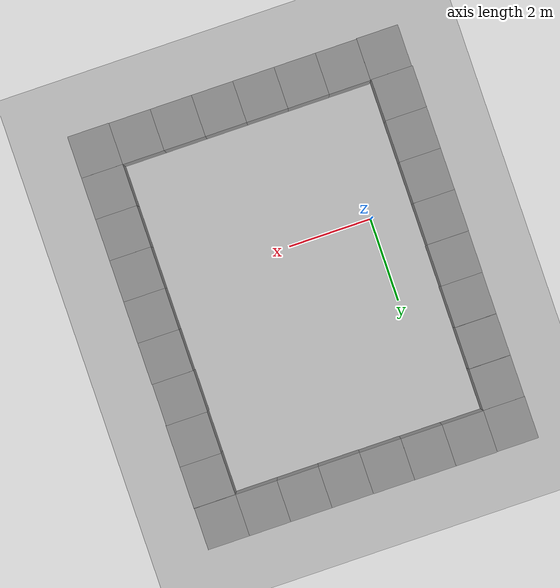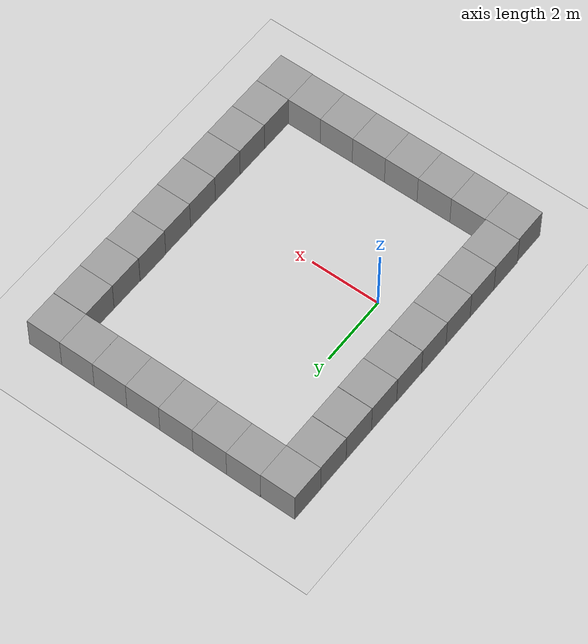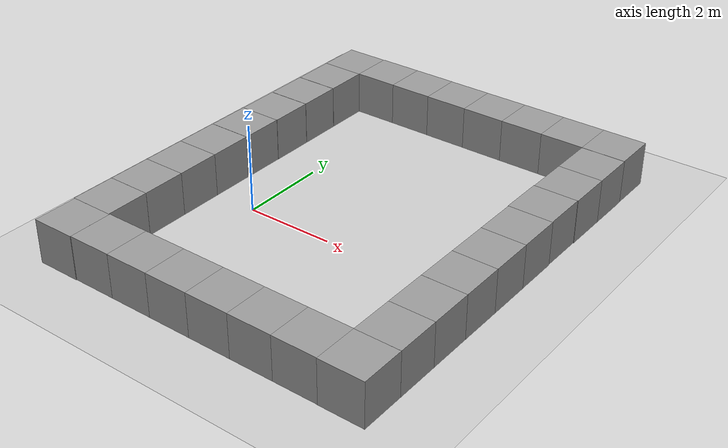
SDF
<sdf version="1.7">
 <world name="default">
  <model name="ground_plane">
   <static>1</static>
   <link name="link">
    <collision name="collision">
     <geometry><plane><normal>0 0 1</normal><size>100 100</size></plane></geometry>
     <surface><friction><ode><mu>100</mu><mu2>50</mu2></ode></friction></surface>
    </collision>
    <visual name="visual">
     <cast_shadows>0</cast_shadows>
     <geometry><plane><normal>0 0 1</normal><size>100 100</size></plane></geometry>
     <material>
      <script><uri>file://media/materials/scripts/gazebo.material</uri><name>Gazebo/Grey</name></script>
     </material>
    </visual>
   </link>
  </model>
  <light name="sun" type="directional">
   <pose>0 0 10 0 -0 0</pose>
   <diffuse>0.8 0.8 0.8 1</diffuse>
   <specular>0.2 0.2 0.2 1</specular>
   <attenuation>
    <range>1000</range>
    <constant>0.9</constant>
    <linear>0.01</linear>
    <quadratic>0.001</quadratic>
   </attenuation>
   <direction>-0.5 0.1 -0.9</direction>
   <spot><inner_angle>0</inner_angle><outer_angle>0</outer_angle><falloff>0</falloff></spot>
  </light>
  <scene><shadows>0</shadows><ambient>0.4 0.4 0.4 1</ambient><background>0.7 0.7 0.7 1</background></scene>
  <physics type="ode">
   <real_time_update_rate>1000</real_time_update_rate>
   <max_step_size>0.001</max_step_size>
   <real_time_factor>1</real_time_factor>
   <ode>
    <solver>
     <type>quick</type>
     <iters>150</iters>
     <precon_iters>0</precon_iters>
     <sor>1.4</sor>
     <use_dynamic_moi_rescaling>1</use_dynamic_moi_rescaling>
    </solver>
    <constraints>
     <cfm>1e-05</cfm>
     <erp>0.2</erp>
     <contact_max_correcting_vel>2000</contact_max_correcting_vel>
     <contact_surface_layer>0.01</contact_surface_layer>
    </constraints>
   </ode>
  </physics>
  <gravity>0 0 -9.8</gravity>
  <magnetic_field>6e-06 2.3e-05 -4.2e-05</magnetic_field>
  <atmosphere type="adiabatic"/>
  <audio><device>default</device></audio>
  <spherical_coordinates>
   <surface_model>EARTH_WGS84</surface_model>
   <latitude_deg>0</latitude_deg>
   <longitude_deg>0</longitude_deg>
   <elevation>0</elevation>
   <heading_deg>0</heading_deg>
  </spherical_coordinates>
  <model name="unit_box">
   <pose>-0.507906 5.50887 0.5 0 -0 2.7e-05</pose>
   <link name="link">
    <inertial>
     <mass>1</mass>
     <inertia>
      <ixx>0.166667</ixx>
      <ixy>0</ixy>
      <ixz>0</ixz>
      <iyy>0.166667</iyy>
      <iyz>0</iyz>
      <izz>0.166667</izz>
     </inertia>
    </inertial>
    <collision name="collision"><geometry><box><size>1 1 1</size></box></geometry></collision>
    <visual name="visual">
     <geometry><box><size>1 1 1</size></box></geometry>
     <material>
      <script><name>Gazebo/Grey</name><uri>file://media/materials/scripts/gazebo.material</uri></script>
     </material>
    </visual>
   </link>
  </model>
  <model name="unit_box_0">
   <pose>0.492095 5.50744 0.5 0 -0 2.7e-05</pose>
   <link name="link">
    <inertial>
     <mass>1</mass>
     <inertia>
      <ixx>0.166667</ixx>
      <ixy>0</ixy>
      <ixz>0</ixz>
      <iyy>0.166667</iyy>
      <iyz>0</iyz>
      <izz>0.166667</izz>
     </inertia>
    </inertial>
    <collision name="collision"><geometry><box><size>1 1 1</size></box></geometry></collision>
    <visual name="visual">
     <geometry><box><size>1 1 1</size></box></geometry>
     <material>
      <script><name>Gazebo/Grey</name><uri>file://media/materials/scripts/gazebo.material</uri></script>
     </material>
    </visual>
   </link>
  </model>
  <model name="unit_box_1">
   <pose>1.49216 5.50345 0.5 0 -0 0.000152</pose>
   <link name="link">
    <inertial>
     <mass>1</mass>
     <inertia>
      <ixx>0.166667</ixx>
      <ixy>0</ixy>
      <ixz>0</ixz>
      <iyy>0.166667</iyy>
      <iyz>0</iyz>
      <izz>0.166667</izz>
     </inertia>
    </inertial>
    <collision name="collision"><geometry><box><size>1 1 1</size></box></geometry></collision>
    <visual name="visual">
     <geometry><box><size>1 1 1</size></box></geometry>
     <material>
      <script><name>Gazebo/Grey</name><uri>file://media/materials/scripts/gazebo.material</uri></script>
     </material>
    </visual>
   </link>
  </model>
  <model name="unit_box_2">
   <pose>2.49216 5.50016 0.5 0 -0 0.000153</pose>
   <link name="link">
    <inertial>
     <mass>1</mass>
     <inertia>
      <ixx>0.166667</ixx>
      <ixy>0</ixy>
      <ixz>0</ixz>
      <iyy>0.166667</iyy>
      <iyz>0</iyz>
      <izz>0.166667</izz>
     </inertia>
    </inertial>
    <collision name="collision"><geometry><box><size>1 1 1</size></box></geometry></collision>
    <visual name="visual">
     <geometry><box><size>1 1 1</size></box></geometry>
     <material>
      <script><name>Gazebo/Grey</name><uri>file://media/materials/scripts/gazebo.material</uri></script>
     </material>
    </visual>
   </link>
  </model>
  <model name="unit_box_3">
   <pose>3.49216 5.50037 0.5 0 -0 0.000145</pose>
   <link name="link">
    <inertial>
     <mass>1</mass>
     <inertia>
      <ixx>0.166667</ixx>
      <ixy>0</ixy>
      <ixz>0</ixz>
      <iyy>0.166667</iyy>
      <iyz>0</iyz>
      <izz>0.166667</izz>
     </inertia>
    </inertial>
    <collision name="collision"><geometry><box><size>1 1 1</size></box></geometry></collision>
    <visual name="visual">
     <geometry><box><size>1 1 1</size></box></geometry>
     <material>
      <script><name>Gazebo/Grey</name><uri>file://media/materials/scripts/gazebo.material</uri></script>
     </material>
    </visual>
   </link>
  </model>
  <model name="unit_box_4">
   <pose>4.49221 5.5008 0.5 0 -0 0.000225</pose>
   <link name="link">
    <inertial>
     <mass>1</mass>
     <inertia>
      <ixx>0.166667</ixx>
      <ixy>0</ixy>
      <ixz>0</ixz>
      <iyy>0.166667</iyy>
      <iyz>0</iyz>
      <izz>0.166667</izz>
     </inertia>
    </inertial>
    <collision name="collision"><geometry><box><size>1 1 1</size></box></geometry></collision>
    <visual name="visual">
     <geometry><box><size>1 1 1</size></box></geometry>
     <material>
      <script><name>Gazebo/Grey</name><uri>file://media/materials/scripts/gazebo.material</uri></script>
     </material>
    </visual>
   </link>
  </model>
  <model name="unit_box_5">
   <pose>5.49221 5.50077 0.5 0 -0 0.000226</pose>
   <link name="link">
    <inertial>
     <mass>1</mass>
     <inertia>
      <ixx>0.166667</ixx>
      <ixy>0</ixy>
      <ixz>0</ixz>
      <iyy>0.166667</iyy>
      <iyz>0</iyz>
      <izz>0.166667</izz>
     </inertia>
    </inertial>
    <collision name="collision"><geometry><box><size>1 1 1</size></box></geometry></collision>
    <visual name="visual">
     <geometry><box><size>1 1 1</size></box></geometry>
     <material>
      <script><name>Gazebo/Grey</name><uri>file://media/materials/scripts/gazebo.material</uri></script>
     </material>
    </visual>
   </link>
  </model>
  <model name="unit_box_6">
   <pose>5.50033 4.49571 0.5 0 0 -0.000146</pose>
   <link name="link">
    <inertial>
     <mass>1</mass>
     <inertia>
      <ixx>0.166667</ixx>
      <ixy>0</ixy>
      <ixz>0</ixz>
      <iyy>0.166667</iyy>
      <iyz>0</iyz>
      <izz>0.166667</izz>
     </inertia>
    </inertial>
    <collision name="collision"><geometry><box><size>1 1 1</size></box></geometry></collision>
    <visual name="visual">
     <geometry><box><size>1 1 1</size></box></geometry>
     <material>
      <script><name>Gazebo/Grey</name><uri>file://media/materials/scripts/gazebo.material</uri></script>
     </material>
    </visual>
   </link>
  </model>
  <model name="unit_box_7">
   <pose>5.50029 3.49571 0.5 -0 -0 -0.000147</pose>
   <link name="link">
    <inertial>
     <mass>1</mass>
     <inertia>
      <ixx>0.166667</ixx>
      <ixy>0</ixy>
      <ixz>0</ixz>
      <iyy>0.166667</iyy>
      <iyz>0</iyz>
      <izz>0.166667</izz>
     </inertia>
    </inertial>
    <collision name="collision"><geometry><box><size>1 1 1</size></box></geometry></collision>
    <visual name="visual">
     <geometry><box><size>1 1 1</size></box></geometry>
     <material>
      <script><name>Gazebo/Grey</name><uri>file://media/materials/scripts/gazebo.material</uri></script>
     </material>
    </visual>
   </link>
  </model>
  <model name="unit_box_8">
   <pose>5.49042 2.49569 0.5 0 -0 -9.9e-05</pose>
   <link name="link">
    <inertial>
     <mass>1</mass>
     <inertia>
      <ixx>0.166667</ixx>
      <ixy>0</ixy>
      <ixz>0</ixz>
      <iyy>0.166667</iyy>
      <iyz>0</iyz>
      <izz>0.166667</izz>
     </inertia>
    </inertial>
    <collision name="collision"><geometry><box><size>1 1 1</size></box></geometry></collision>
    <visual name="visual">
     <geometry><box><size>1 1 1</size></box></geometry>
     <material>
      <script><name>Gazebo/Grey</name><uri>file://media/materials/scripts/gazebo.material</uri></script>
     </material>
    </visual>
   </link>
  </model>
  <model name="unit_box_9">
   <pose>5.50109 1.49559 0.5 0 -0 9.4e-05</pose>
   <link name="link">
    <inertial>
     <mass>1</mass>
     <inertia>
      <ixx>0.166667</ixx>
      <ixy>0</ixy>
      <ixz>0</ixz>
      <iyy>0.166667</iyy>
      <iyz>0</iyz>
      <izz>0.166667</izz>
     </inertia>
    </inertial>
    <collision name="collision"><geometry><box><size>1 1 1</size></box></geometry></collision>
    <visual name="visual">
     <geometry><box><size>1 1 1</size></box></geometry>
     <material>
      <script><name>Gazebo/Grey</name><uri>file://media/materials/scripts/gazebo.material</uri></script>
     </material>
    </visual>
   </link>
  </model>
  <model name="unit_box_10">
   <pose>-1.50793 5.50117 0.5 0 -0 2.2e-05</pose>
   <link name="link">
    <inertial>
     <mass>1</mass>
     <inertia>
      <ixx>0.166667</ixx>
      <ixy>0</ixy>
      <ixz>0</ixz>
      <iyy>0.166667</iyy>
      <iyz>0</iyz>
      <izz>0.166667</izz>
     </inertia>
    </inertial>
    <collision name="collision"><geometry><box><size>1 1 1</size></box></geometry></collision>
    <visual name="visual">
     <geometry><box><size>1 1 1</size></box></geometry>
     <material>
      <script><name>Gazebo/Grey</name><uri>file://media/materials/scripts/gazebo.material</uri></script>
     </material>
    </visual>
   </link>
  </model>
  <model name="unit_box_11">
   <pose>-1.50371 4.50098 0.5 0 -0 0</pose>
   <link name="link">
    <inertial>
     <mass>1</mass>
     <inertia>
      <ixx>0.166667</ixx>
      <ixy>0</ixy>
      <ixz>0</ixz>
      <iyy>0.166667</iyy>
      <iyz>0</iyz>
      <izz>0.166667</izz>
     </inertia>
    </inertial>
    <collision name="collision"><geometry><box><size>1 1 1</size></box></geometry></collision>
    <visual name="visual">
     <geometry><box><size>1 1 1</size></box></geometry>
     <material>
      <script><name>Gazebo/Grey</name><uri>file://media/materials/scripts/gazebo.material</uri></script>
     </material>
    </visual>
   </link>
  </model>
  <model name="unit_box_12">
   <pose>-1.50371 3.4964 0.5 0 -0 0</pose>
   <link name="link">
    <inertial>
     <mass>1</mass>
     <inertia>
      <ixx>0.166667</ixx>
      <ixy>0</ixy>
      <ixz>0</ixz>
      <iyy>0.166667</iyy>
      <iyz>0</iyz>
      <izz>0.166667</izz>
     </inertia>
    </inertial>
    <collision name="collision"><geometry><box><size>1 1 1</size></box></geometry></collision>
    <visual name="visual">
     <geometry><box><size>1 1 1</size></box></geometry>
     <material>
      <script><name>Gazebo/Grey</name><uri>file://media/materials/scripts/gazebo.material</uri></script>
     </material>
    </visual>
   </link>
  </model>
  <model name="unit_box_13">
   <pose>-1.50371 2.49195 0.5 0 -0 0</pose>
   <link name="link">
    <inertial>
     <mass>1</mass>
     <inertia>
      <ixx>0.166667</ixx>
      <ixy>0</ixy>
      <ixz>0</ixz>
      <iyy>0.166667</iyy>
      <iyz>0</iyz>
      <izz>0.166667</izz>
     </inertia>
    </inertial>
    <collision name="collision"><geometry><box><size>1 1 1</size></box></geometry></collision>
    <visual name="visual">
     <geometry><box><size>1 1 1</size></box></geometry>
     <material>
      <script><name>Gazebo/Grey</name><uri>file://media/materials/scripts/gazebo.material</uri></script>
     </material>
    </visual>
   </link>
  </model>
  <model name="unit_box_14">
   <pose>-1.50957 1.49195 0.5 0 -0 0</pose>
   <link name="link">
    <inertial>
     <mass>1</mass>
     <inertia>
      <ixx>0.166667</ixx>
      <ixy>0</ixy>
      <ixz>0</ixz>
      <iyy>0.166667</iyy>
      <iyz>0</iyz>
      <izz>0.166667</izz>
     </inertia>
    </inertial>
    <collision name="collision"><geometry><box><size>1 1 1</size></box></geometry></collision>
    <visual name="visual">
     <geometry><box><size>1 1 1</size></box></geometry>
     <material>
      <script><name>Gazebo/Grey</name><uri>file://media/materials/scripts/gazebo.material</uri></script>
     </material>
    </visual>
   </link>
  </model>
  <model name="unit_box_15">
   <pose>-1.51509 0.489432 0.5 0 -0 5.3e-05</pose>
   <link name="link">
    <inertial>
     <mass>1</mass>
     <inertia>
      <ixx>0.166667</ixx>
      <ixy>0</ixy>
      <ixz>0</ixz>
      <iyy>0.166667</iyy>
      <iyz>0</iyz>
      <izz>0.166667</izz>
     </inertia>
    </inertial>
    <collision name="collision"><geometry><box><size>1 1 1</size></box></geometry></collision>
    <visual name="visual">
     <geometry><box><size>1 1 1</size></box></geometry>
     <material>
      <script><name>Gazebo/Grey</name><uri>file://media/materials/scripts/gazebo.material</uri></script>
     </material>
    </visual>
   </link>
  </model>
  <model name="unit_box_16">
   <pose>-1.51506 -0.510686 0.5 0 -0 3.3e-05</pose>
   <link name="link">
    <inertial>
     <mass>1</mass>
     <inertia>
      <ixx>0.166667</ixx>
      <ixy>0</ixy>
      <ixz>0</ixz>
      <iyy>0.166667</iyy>
      <iyz>0</iyz>
      <izz>0.166667</izz>
     </inertia>
    </inertial>
    <collision name="collision"><geometry><box><size>1 1 1</size></box></geometry></collision>
    <visual name="visual">
     <geometry><box><size>1 1 1</size></box></geometry>
     <material>
      <script><name>Gazebo/Grey</name><uri>file://media/materials/scripts/gazebo.material</uri></script>
     </material>
    </visual>
   </link>
  </model>
  <model name="unit_box_17">
   <pose>-1.51499 -1.51069 0.5 0 -0 2.1e-05</pose>
   <link name="link">
    <inertial>
     <mass>1</mass>
     <inertia>
      <ixx>0.166667</ixx>
      <ixy>0</ixy>
      <ixz>0</ixz>
      <iyy>0.166667</iyy>
      <iyz>0</iyz>
      <izz>0.166667</izz>
     </inertia>
    </inertial>
    <collision name="collision"><geometry><box><size>1 1 1</size></box></geometry></collision>
    <visual name="visual">
     <geometry><box><size>1 1 1</size></box></geometry>
     <material>
      <script><name>Gazebo/Grey</name><uri>file://media/materials/scripts/gazebo.material</uri></script>
     </material>
    </visual>
   </link>
  </model>
  <model name="unit_box_18">
   <pose>-1.51564 -2.5107 0.5 0 -0 3.1e-05</pose>
   <link name="link">
    <inertial>
     <mass>1</mass>
     <inertia>
      <ixx>0.166667</ixx>
      <ixy>0</ixy>
      <ixz>0</ixz>
      <iyy>0.166667</iyy>
      <iyz>0</iyz>
      <izz>0.166667</izz>
     </inertia>
    </inertial>
    <collision name="collision"><geometry><box><size>1 1 1</size></box></geometry></collision>
    <visual name="visual">
     <geometry><box><size>1 1 1</size></box></geometry>
     <material>
      <script><name>Gazebo/Grey</name><uri>file://media/materials/scripts/gazebo.material</uri></script>
     </material>
    </visual>
   </link>
  </model>
  <model name="unit_box_19">
   <pose>5.50413 0.495574 0.5 0 -0 0.000126</pose>
   <link name="link">
    <inertial>
     <mass>1</mass>
     <inertia>
      <ixx>0.166667</ixx>
      <ixy>0</ixy>
      <ixz>0</ixz>
      <iyy>0.166667</iyy>
      <iyz>0</iyz>
      <izz>0.166667</izz>
     </inertia>
    </inertial>
    <collision name="collision"><geometry><box><size>1 1 1</size></box></geometry></collision>
    <visual name="visual">
     <geometry><box><size>1 1 1</size></box></geometry>
     <material>
      <script><name>Gazebo/Grey</name><uri>file://media/materials/scripts/gazebo.material</uri></script>
     </material>
    </visual>
   </link>
  </model>
  <model name="unit_box_20">
   <pose>5.50451 -0.504479 0.5 0 -0 0.000231</pose>
   <link name="link">
    <inertial>
     <mass>1</mass>
     <inertia>
      <ixx>0.166667</ixx>
      <ixy>0</ixy>
      <ixz>0</ixz>
      <iyy>0.166667</iyy>
      <iyz>0</iyz>
      <izz>0.166667</izz>
     </inertia>
    </inertial>
    <collision name="collision"><geometry><box><size>1 1 1</size></box></geometry></collision>
    <visual name="visual">
     <geometry><box><size>1 1 1</size></box></geometry>
     <material>
      <script><name>Gazebo/Grey</name><uri>file://media/materials/scripts/gazebo.material</uri></script>
     </material>
    </visual>
   </link>
  </model>
  <model name="unit_box_21">
   <pose>5.50446 -1.5047 0.5 0 -0 0.000665</pose>
   <link name="link">
    <inertial>
     <mass>1</mass>
     <inertia>
      <ixx>0.166667</ixx>
      <ixy>0</ixy>
      <ixz>0</ixz>
      <iyy>0.166667</iyy>
      <iyz>0</iyz>
      <izz>0.166667</izz>
     </inertia>
    </inertial>
    <collision name="collision"><geometry><box><size>1 1 1</size></box></geometry></collision>
    <visual name="visual">
     <geometry><box><size>1 1 1</size></box></geometry>
     <material>
      <script><name>Gazebo/Grey</name><uri>file://media/materials/scripts/gazebo.material</uri></script>
     </material>
    </visual>
   </link>
  </model>
  <model name="unit_box_22">
   <pose>5.50602 -2.5047 0.5 0 -0 0.000662</pose>
   <link name="link">
    <inertial>
     <mass>1</mass>
     <inertia>
      <ixx>0.166667</ixx>
      <ixy>0</ixy>
      <ixz>0</ixz>
      <iyy>0.166667</iyy>
      <iyz>0</iyz>
      <izz>0.166667</izz>
     </inertia>
    </inertial>
    <collision name="collision"><geometry><box><size>1 1 1</size></box></geometry></collision>
    <visual name="visual">
     <geometry><box><size>1 1 1</size></box></geometry>
     <material>
      <script><name>Gazebo/Grey</name><uri>file://media/materials/scripts/gazebo.material</uri></script>
     </material>
    </visual>
   </link>
  </model>
  <model name="unit_box_23">
   <pose>5.50639 -3.50499 0.5 0 -0 8.6e-05</pose>
   <link name="link">
    <inertial>
     <mass>1</mass>
     <inertia>
      <ixx>0.166667</ixx>
      <ixy>0</ixy>
      <ixz>0</ixz>
      <iyy>0.166667</iyy>
      <iyz>0</iyz>
      <izz>0.166667</izz>
     </inertia>
    </inertial>
    <collision name="collision"><geometry><box><size>1 1 1</size></box></geometry></collision>
    <visual name="visual">
     <geometry><box><size>1 1 1</size></box></geometry>
     <material>
      <script><name>Gazebo/Grey</name><uri>file://media/materials/scripts/gazebo.material</uri></script>
     </material>
    </visual>
   </link>
  </model>
  <model name="unit_box_10_clone">
   <pose>4.50639 -3.49877 0.5 0 -0 8.6e-05</pose>
   <link name="link">
    <inertial>
     <mass>1</mass>
     <inertia>
      <ixx>0.166667</ixx>
      <ixy>0</ixy>
      <ixz>0</ixz>
      <iyy>0.166667</iyy>
      <iyz>0</iyz>
      <izz>0.166667</izz>
     </inertia>
    </inertial>
    <collision name="collision"><geometry><box><size>1 1 1</size></box></geometry></collision>
    <visual name="visual">
     <geometry><box><size>1 1 1</size></box></geometry>
     <material>
      <script><name>Gazebo/Grey</name><uri>file://media/materials/scripts/gazebo.material</uri></script>
     </material>
    </visual>
   </link>
  </model>
  <model name="unit_box_24">
   <pose>3.50639 -3.4983 0.5 0 -0 8.9e-05</pose>
   <link name="link">
    <inertial>
     <mass>1</mass>
     <inertia>
      <ixx>0.166667</ixx>
      <ixy>0</ixy>
      <ixz>0</ixz>
      <iyy>0.166667</iyy>
      <iyz>0</iyz>
      <izz>0.166667</izz>
     </inertia>
    </inertial>
    <collision name="collision"><geometry><box><size>1 1 1</size></box></geometry></collision>
    <visual name="visual">
     <geometry><box><size>1 1 1</size></box></geometry>
     <material>
      <script><name>Gazebo/Grey</name><uri>file://media/materials/scripts/gazebo.material</uri></script>
     </material>
    </visual>
   </link>
  </model>
  <model name="unit_box_25">
   <pose>2.50638 -3.4984 0.5 0 -0 9.3e-05</pose>
   <link name="link">
    <inertial>
     <mass>1</mass>
     <inertia>
      <ixx>0.166667</ixx>
      <ixy>0</ixy>
      <ixz>0</ixz>
      <iyy>0.166667</iyy>
      <iyz>0</iyz>
      <izz>0.166667</izz>
     </inertia>
    </inertial>
    <collision name="collision"><geometry><box><size>1 1 1</size></box></geometry></collision>
    <visual name="visual">
     <geometry><box><size>1 1 1</size></box></geometry>
     <material>
      <script><name>Gazebo/Grey</name><uri>file://media/materials/scripts/gazebo.material</uri></script>
     </material>
    </visual>
   </link>
  </model>
  <model name="unit_box_26">
   <pose>1.50638 -3.49847 0.5 0 -0 0.0001</pose>
   <link name="link">
    <inertial>
     <mass>1</mass>
     <inertia>
      <ixx>0.166667</ixx>
      <ixy>0</ixy>
      <ixz>0</ixz>
      <iyy>0.166667</iyy>
      <iyz>0</iyz>
      <izz>0.166667</izz>
     </inertia>
    </inertial>
    <collision name="collision"><geometry><box><size>1 1 1</size></box></geometry></collision>
    <visual name="visual">
     <geometry><box><size>1 1 1</size></box></geometry>
     <material>
      <script><name>Gazebo/Grey</name><uri>file://media/materials/scripts/gazebo.material</uri></script>
     </material>
    </visual>
   </link>
  </model>
  <model name="unit_box_27">
   <pose>0.506374 -3.49831 0.5 0 -0 0.000109</pose>
   <link name="link">
    <inertial>
     <mass>1</mass>
     <inertia>
      <ixx>0.166667</ixx>
      <ixy>0</ixy>
      <ixz>0</ixz>
      <iyy>0.166667</iyy>
      <iyz>0</iyz>
      <izz>0.166667</izz>
     </inertia>
    </inertial>
    <collision name="collision"><geometry><box><size>1 1 1</size></box></geometry></collision>
    <visual name="visual">
     <geometry><box><size>1 1 1</size></box></geometry>
     <material>
      <script><name>Gazebo/Grey</name><uri>file://media/materials/scripts/gazebo.material</uri></script>
     </material>
    </visual>
   </link>
  </model>
  <model name="unit_box_28">
   <pose>-0.493627 -3.49863 0.5 0 -0 0.00011</pose>
   <link name="link">
    <inertial>
     <mass>1</mass>
     <inertia>
      <ixx>0.166667</ixx>
      <ixy>0</ixy>
      <ixz>0</ixz>
      <iyy>0.166667</iyy>
      <iyz>0</iyz>
      <izz>0.166667</izz>
     </inertia>
    </inertial>
    <collision name="collision"><geometry><box><size>1 1 1</size></box></geometry></collision>
    <visual name="visual">
     <geometry><box><size>1 1 1</size></box></geometry>
     <material>
      <script><name>Gazebo/Grey</name><uri>file://media/materials/scripts/gazebo.material</uri></script>
     </material>
    </visual>
   </link>
  </model>
  <model name="unit_box_29">
   <pose>-1.49383 -3.51075 0.5 0 -0 2.6e-05</pose>
   <link name="link">
    <inertial>
     <mass>1</mass>
     <inertia>
      <ixx>0.166667</ixx>
      <ixy>0</ixy>
      <ixz>0</ixz>
      <iyy>0.166667</iyy>
      <iyz>0</iyz>
      <izz>0.166667</izz>
     </inertia>
    </inertial>
    <collision name="collision"><geometry><box><size>1 1 1</size></box></geometry></collision>
    <visual name="visual">
     <geometry><box><size>1 1 1</size></box></geometry>
     <material>
      <script><name>Gazebo/Grey</name><uri>file://media/materials/scripts/gazebo.material</uri></script>
     </material>
    </visual>
   </link>
  </model>
 </world>
</sdf>
